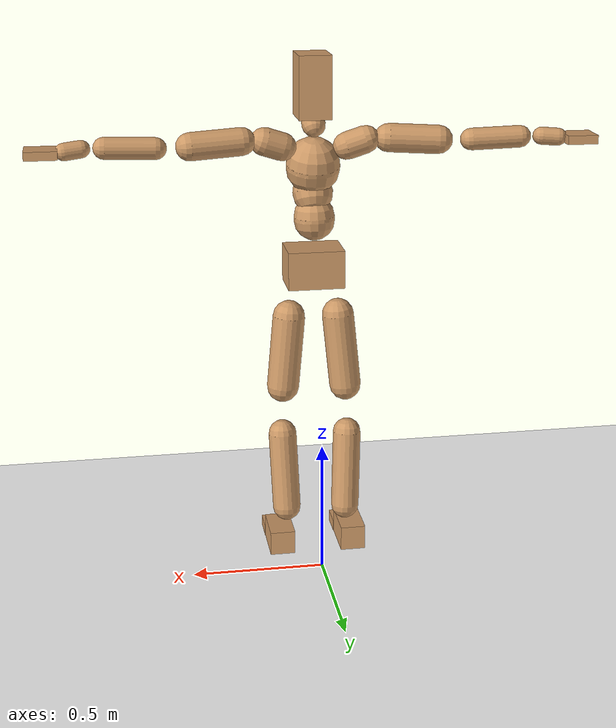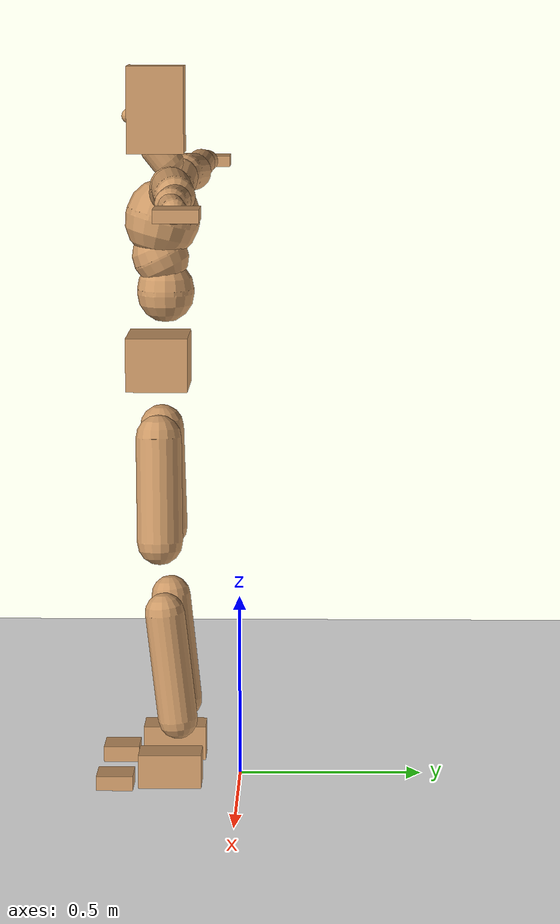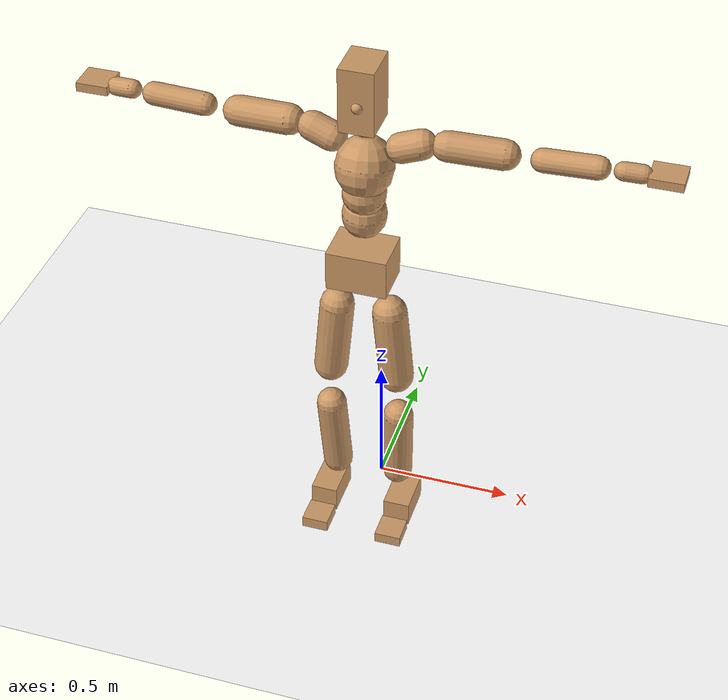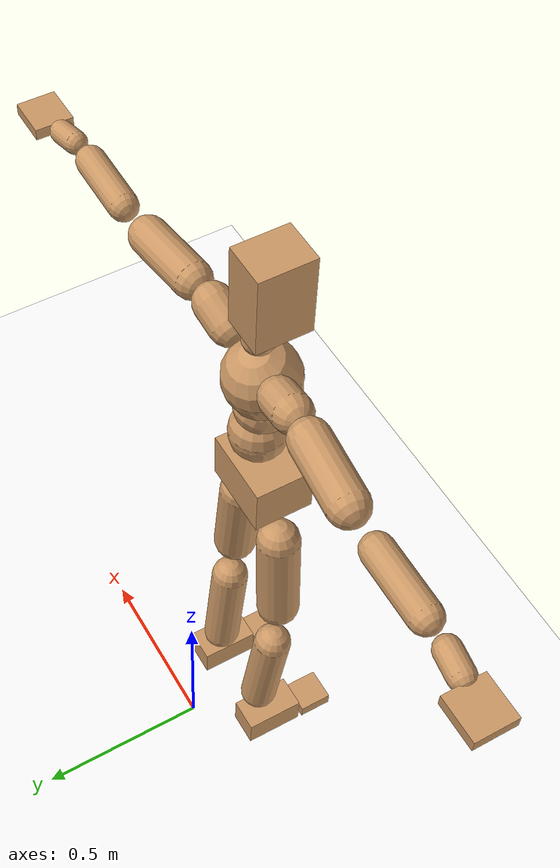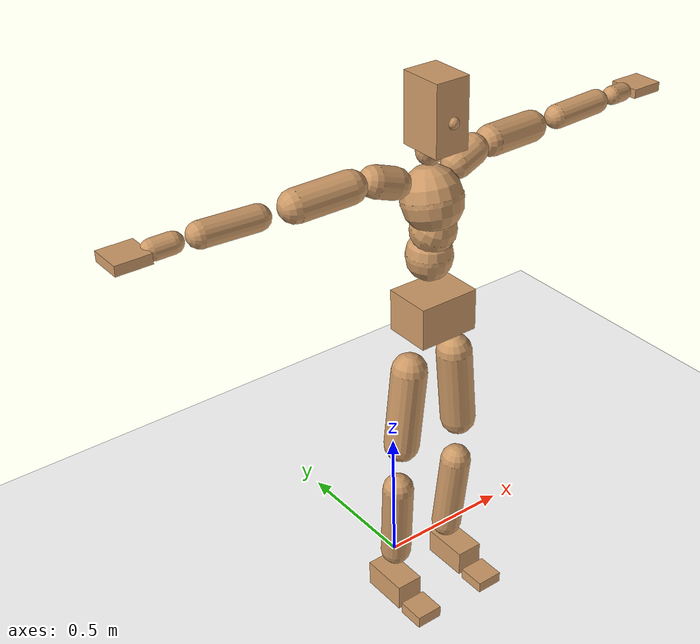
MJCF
<mujoco model="humanoid">
  <option integrator="implicitfast" />

  <visual>
    <global offwidth="1280" offheight="960" />
    <headlight active="1" ambient="0.34 0.34 0.34" diffuse="0.5 0.5 0.5" />
  </visual>

  <default>
    <joint damping="2" stiffness="2" armature="0.01" limited="true" solimplimit="0 .99 .01" />
    <geom condim="1" friction="0.7 0.005 0.0001" solimp=".99 .99 .003" solref="0.015 1" margin="0.001" rgba="0.8 0.6 .4 1" />
    <default class="smplcontact">
      <geom condim="3" friction="1. 0.005 0.0001" solref="0.015 1" solimp="0.98 0.98 0.001" priority="1" />
    </default>
    <default class="stiff_medium">
      <joint stiffness="10" />
    </default>
    <default class="stiff_medium_higher">
      <joint stiffness="50" />
    </default>
    <default class="stiff_high">
      <joint stiffness="100" />
    </default>
  </default>

  <asset>
    <texture type="skybox" builtin="gradient" rgb1="0.99 0.99 0.99" rgb2="0.608 0.828 0.892" width="100" />
    <texture builtin="flat" height="1278" mark="cross" markrgb="1 1 1" name="texgeom" random="0.01" rgb1="0.8 0.6 0.4" rgb2="0.8 0.6 0.4" type="cube" width="127" />
    <texture name="texplane" type="2d" builtin="checker" markrgb="1 1 1" rgb1="0.756 0.772 0.76" rgb2="0.6 0.6 0.6" width="100" height="100" />
    <material name="MatPlane" reflectance="0.5" texture="texplane" texrepeat="1 1" texuniform="true" />
    <material name="geom" texture="texgeom" texuniform="true" />
  </asset>

  <worldbody>
    <light name="tracking_light" pos="0 0 7" dir="0 0 -1" directional="true" cutoff="100" exponent="1" diffuse="1 1 1" specular="0.1 0.1 0.1" mode="trackcom" />
    <camera name="back" pos="0 3 2.4" xyaxes="-1 0 0 0 -1 2" mode="trackcom" />
    <camera name="side" pos="-3 0 2.4" xyaxes="0 -1 0 1 0 2" mode="trackcom" />
    <camera name="front_side" pos="-2.8 -2.8 0.8" xyaxes="0.5 -0.5 0 0.1 0.1 1" mode="trackcom" />
    <geom condim="3" name="floor" pos="0 0 0" rgba="1 1 1 1" size="100 100 .2" type="plane" material="MatPlane" />
    <body name="Pelvis" pos="-0.0018 -0.2233 1.16548" euler="90 0 0">
      <site name="Pelvis" size="0.01" />
      <freejoint name="Pelvis" />
      <geom type="box" pos="-0.0000 -0.0121 -0.0055" size="0.1069 0.0722 0.083" quat="1.0000 0.0000 0.0000 0.0000" density="3165.830099" name="Pelvis" />
      <body name="L_Hip" pos="0.086875 -0.11425 -0.0085">
        <joint name="L_Hip_x" type="hinge" pos="0 0 0" axis="1 0 0" stiffness="14.589841836734694" range="-160.0 22.92" class="stiff_medium" damping="24.10689143795971" armature="0.017703099984975993"/>
        <joint name="L_Hip_y" type="hinge" pos="0 0 0" axis="0 1 0" stiffness="14.527612551020406" range="-70.0 70.0" class="stiff_medium" damping="14.262213477061751" armature="0.01400166287137073"/>
        <joint name="L_Hip_z" type="hinge" pos="0 0 0" axis="0 0 1" stiffness="14.532940204081633" range="-28.65 90.0" class="stiff_medium" damping="16.042326803653772" armature="0.01770847782081624"/>
        <geom type="capsule" density="2040.816327" fromto="0.008625 -0.09375 -0.001125 0.03425 -0.37525 -0.0045" size="0.0615" name="L_Hip" />
        <body name="L_Knee" pos="0.042875 -0.469 -0.005625">
          <joint name="L_Knee_x" type="hinge" pos="0 0 0" axis="1 0 0" range="-5.16 171.89" damping="12.427866473289074" armature="0.01695568739341871" stiffness="2.8466087346938775"/>
          <joint name="L_Knee_y" type="hinge" pos="0 0 0" axis="0 1 0" range="-4.58 6.88" damping="11.131948599716754" armature="0.013404538190087148" stiffness="2.888953489795919"/>
          <joint name="L_Knee_z" type="hinge" pos="0 0 0" axis="0 0 1" range="-6.88 4.58" damping="12.396032357314192" armature="0.01698035549968793" stiffness="2.8279299387755104"/>
          <geom type="capsule" density="1234.567901" fromto="-0.003375 -0.0995 -0.010875 -0.013625 -0.398 -0.04375" size="0.0541" name="L_Knee" />
          <body name="L_Ankle" pos="-0.017 -0.4975 -0.054625">
            <joint name="L_Ankle_x" type="hinge" pos="0 0 0" axis="1 0 0" range="-45.84 45.84" class="stiff_medium" damping="7.851672460898037" armature="0.013699724540716583" stiffness="12.5"/>
            <joint name="L_Ankle_y" type="hinge" pos="0 0 0" axis="0 1 0" range="-74.48 22.92" class="stiff_medium" damping="3.9060654718054293" armature="0.013562086640027176" stiffness="12.5"/>
            <joint name="L_Ankle_z" type="hinge" pos="0 0 0" axis="0 0 1" range="-4.58 4.58" class="stiff_medium" damping="7.548153538649441" armature="0.012661027076228017" stiffness="12.5"/>
            <geom type="box" pos="0.029125 -0.029875 0.03025" size="0.0483 0.0464 0.085" quat="1.0000 0.0000 0.0000 0.0000" density="449.071558" name="L_Ankle" class="smplcontact" />
            <body name="L_Toe" pos="0.033 -0.06975 0.149125">
              <joint name="L_Toe_x" type="hinge" pos="0 0 0" axis="1 0 0" range="-91.67 22.92" armature="0.012138557001779838" damping="2.4635905708720998" stiffness="2.5"/>
              <joint name="L_Toe_y" type="hinge" pos="0 0 0" axis="0 1 0" range="-4.58 4.58" armature="0.01150678605468797" damping="2.3986231524239034" stiffness="2.5"/>
              <joint name="L_Toe_z" type="hinge" pos="0 0 0" axis="0 0 1" range="-4.58 4.58" armature="0.010229379204578545" damping="2.261567952171518" stiffness="2.5"/>
              <geom type="box" pos="-0.00375 0.006875 0.031" size="0.0478 0.02 0.0496" quat="1.0000 0.0000 0.0000 0.0000" density="423.206892" name="L_Toe" class="smplcontact" />
            </body>
          </body>
        </body>
      </body>
      <body name="R_Hip" pos="-0.084625 -0.113125 -0.005375">
        <joint name="R_Hip_x" type="hinge" pos="0 0 0" axis="1 0 0" stiffness="14.589841836734694" range="-160.0 22.92" class="stiff_medium" damping="24.10689143795971" armature="0.017703099984975993"/>
        <joint name="R_Hip_y" type="hinge" pos="0 0 0" axis="0 1 0" stiffness="14.527612551020406" range="-70.0 70.0" class="stiff_medium" damping="14.262213477061751" armature="0.01400166287137073"/>
        <joint name="R_Hip_z" type="hinge" pos="0 0 0" axis="0 0 1" stiffness="14.532940204081633" range="-90.0 28.65" class="stiff_medium" damping="16.042326803653772" armature="0.01770847782081624"/>
        <geom type="capsule" density="2040.816327" fromto="-0.009625 -0.095625 -0.00225 -0.03825 -0.382625 -0.008875" size="0.0606" name="R_Hip" />
        <body name="R_Knee" pos="-0.047875 -0.47825 -0.011125">
          <joint name="R_Knee_x" type="hinge" pos="0 0 0" axis="1 0 0" range="-5.16 171.89" damping="12.427866473289074" armature="0.01695568739341871" stiffness="2.8466087346938775"/>
          <joint name="R_Knee_y" type="hinge" pos="0 0 0" axis="0 1 0" range="-6.88 4.58" damping="11.131948599716754" armature="0.013404538190087148" stiffness="2.888953489795919"/>
          <joint name="R_Knee_z" type="hinge" pos="0 0 0" axis="0 0 1" range="-4.58 6.88" damping="12.396032357314192" armature="0.01698035549968793" stiffness="2.8279299387755104"/>
          <geom type="capsule" density="1234.567901" fromto="0.004 -0.099625 -0.010625 0.01575 -0.398375 -0.04225" size="0.0541" name="R_Knee" />
          <body name="R_Ankle" pos="0.01975 -0.498 -0.052875">
            <joint name="R_Ankle_x" type="hinge" pos="0 0 0" axis="1 0 0" range="-45.84 45.84" class="stiff_medium" damping="7.851672460898037" armature="0.013699724540716583" stiffness="12.5"/>
            <joint name="R_Ankle_y" type="hinge" pos="0 0 0" axis="0 1 0" range="-22.92 74.48" class="stiff_medium" damping="3.9060654718054293" armature="0.013562086640027176" stiffness="12.5"/>
            <joint name="R_Ankle_z" type="hinge" pos="0 0 0" axis="0 0 1" range="-4.58 4.58" class="stiff_medium" damping="7.548153538649441" armature="0.012661027076228017" stiffness="12.5"/>
            <geom type="box" pos="-0.0265 -0.02175 0.032" size="0.0483 0.0478 0.0865" quat="1.0000 0.0000 0.0000 0.0000" density="434.700981" name="R_Ankle" class="smplcontact" />
            <body name="R_Toe" pos="-0.03175 -0.060125 0.154125">
              <joint name="R_Toe_x" type="hinge" pos="0 0 0" axis="1 0 0" range="-91.67 22.92" armature="0.012138557001779838" damping="2.4635905708720998" stiffness="2.5"/>
              <joint name="R_Toe_y" type="hinge" pos="0 0 0" axis="0 1 0" range="-4.58 4.58" armature="0.01150678605468797" damping="2.3986231524239034" stiffness="2.5"/>
              <joint name="R_Toe_z" type="hinge" pos="0 0 0" axis="0 0 1" range="-4.58 4.58" armature="0.010229379204578545" damping="2.261567952171518" stiffness="2.5"/>
              <geom type="box" pos="0.00525 0.005625 0.028375" size="0.0479 0.0216 0.0493" quat="1.0000 0.0000 0.0000 0.0000" density="407.384095" name="R_Toe" class="smplcontact" />
            </body>
          </body>
        </body>
      </body>
      <body name="Torso" pos="-0.0025 0.109 -0.0267">
        <joint name="Torso_x" type="hinge" pos="0 0 0" axis="1 0 0" range="-25.78 57.3" class="stiff_medium" damping="16.249002662379553" armature="0.01100082294488812" stiffness="10.667084285714289"/>
        <joint name="Torso_y" type="hinge" pos="0 0 0" axis="0 1 0" range="-57.3 57.3" class="stiff_high" damping="25.82786225767886" armature="0.015782642166796153" stiffness="105.6664755102041"/>
        <joint name="Torso_z" type="hinge" pos="0 0 0" axis="0 0 1" range="-34.38 34.38" class="stiff_high" damping="22.95942684909094" armature="0.012628565201764912" stiffness="104.35375531914897"/>
        <geom type="capsule" density="2040.816327" fromto="0.0025 0.0608 0.0005 0.003 0.0743 0.0006" size="0.0769" name="Torso" />
        <body name="Spine" pos="0.0055 0.1352 0.0011">
          <joint name="Spine_x" type="hinge" pos="0 0 0" axis="1 0 0" stiffness="10.801640204081632" range="-25.78 57.3" class="stiff_medium" damping="16.529498689681223" armature="0.011242092117287047"/>
          <joint name="Spine_y" type="hinge" pos="0 0 0" axis="0 1 0" stiffness="10.993194042553192" range="-57.3 57.3" class="stiff_high" damping="10.550939846165114" armature="0.01582262102443805"/>
          <joint name="Spine_z" type="hinge" pos="0 0 0" axis="0 0 1" stiffness="21.950184081632656" range="-34.38 34.38" class="stiff_high" damping="14.755254913518769" armature="0.013775988465595869"/>
          <geom type="capsule" density="2040.816327" fromto="0.0007 0.0238 0.0114 0.0008 0.0291 0.014" size="0.0755" name="Spine" />
          <body name="Chest" pos="0.0015 0.0529 0.0254">
            <joint name="Chest_x" type="hinge" pos="0 0 0" axis="1 0 0" stiffness="11.160686250000001" range="-25.78 57.3" class="stiff_medium" damping="16.913025635620162" armature="0.011391192649850413"/>
            <joint name="Chest_y" type="hinge" pos="0 0 0" axis="0 1 0" stiffness="12.279827826086954" range="-57.3 57.3" class="stiff_high" damping="11.15352776697087" armature="0.015828955346832544"/>
            <joint name="Chest_z" type="hinge" pos="0 0 0" axis="0 0 1" stiffness="22.066057083333334" range="-34.38 34.38" class="stiff_high" damping="15.064016907343916" armature="0.01428316177394549"/>
            <geom type="capsule" density="2040.816327" fromto="-0.0009 0.0682 -0.0173 -0.001 0.0833 -0.0212" size="0.1002" name="Chest" />
            <body name="Neck" pos="-0.0028 0.2139 -0.0429">
              <joint name="Neck_x" type="hinge" pos="0 0 0" axis="1 0 0" range="-28.65 57.3" class="stiff_medium_higher" damping="10.000000000000002" armature="0.010000000000000005" stiffness="50.0"/>
              <joint name="Neck_y" type="hinge" pos="0 0 0" axis="0 1 0" range="-40.11 40.11" class="stiff_medium_higher" damping="10.0" armature="0.010000000000000002" stiffness="50.0"/>
              <joint name="Neck_z" type="hinge" pos="0 0 0" axis="0 0 1" range="-40.11 40.11" class="stiff_medium_higher" damping="10.0" armature="0.01" stiffness="50.0"/>
              <geom type="capsule" density="1000" fromto="0.001 0.013 0.0103 0.0041 0.052 0.0411" size="0.0436" name="Neck" />
              <body name="Head" pos="0.0052 0.065 0.0513">
                <joint name="Head_x" type="hinge" pos="0 0 0" axis="1 0 0" range="-28.65 57.3" class="stiff_medium_higher" damping="2.0000000000000027" armature="0.010000000000000026" stiffness="50.0"/>
                <joint name="Head_y" type="hinge" pos="0 0 0" axis="0 1 0" range="-40.11 40.11" class="stiff_medium_higher" damping="2.0" armature="0.01" stiffness="50.0"/>
                <joint name="Head_z" type="hinge" pos="0 0 0" axis="0 0 1" range="-40.11 40.11" class="stiff_medium_higher" damping="1.9999999999999964" armature="0.009999999999999966" stiffness="50.0"/>
                <geom type="box" pos="-0.0042 0.0876 -0.0116" size="0.0606 0.1154 0.076" quat="1.0000 0.0000 0.0000 0.0000" density="1018.069894" name="Head" />
                <geom type="capsule" name="nose" size="0.02 0.01" pos="0 0.07 0.05" quat="1 0 0 0" mass="0" contype="0" conaffinity="0" />
              </body>
            </body>
            <body name="L_Thorax" pos="0.09456 0.14604 -0.04092">
              <joint name="L_Thorax_x" type="hinge" pos="0 0 0" axis="1 0 0" range="-10.89 4.58" class="stiff_medium_higher" damping="27.34282803714538" armature="0.013883161405287376" stiffness="67.31448112244898"/>
              <joint name="L_Thorax_y" type="hinge" pos="0 0 0" axis="0 1 0" range="-28.65 17.19" class="stiff_medium_higher" damping="29.39539222803986" armature="0.015973211475722778" stiffness="67.620175"/>
              <joint name="L_Thorax_z" type="hinge" pos="0 0 0" axis="0 0 1" range="-31.51 40.11" class="stiff_medium_higher" damping="29.39640952740423" armature="0.015975115138279115" stiffness="67.61679693877551"/>
              <geom type="capsule" density="1000" fromto="0.02184 0.00732 -0.00216 0.08736 0.02928 -0.00852" size="0.0521" name="L_Thorax" />
              <body name="L_Shoulder" pos="0.1092 0.0366 -0.01068">
                <joint name="L_Shoulder_x" type="hinge" pos="0 0 0" axis="1 0 0" range="-97.4 97.4" class="stiff_medium" damping="7.934224871342941" armature="0.013032307273704974" stiffness="13.417919999999999"/>
                <joint name="L_Shoulder_y" type="hinge" pos="0 0 0" axis="0 1 0" range="-108.86 80.21" class="stiff_medium" damping="8.787023272078152" armature="0.015885669306109254" stiffness="13.501298367346937"/>
                <joint name="L_Shoulder_z" type="hinge" pos="0 0 0" axis="0 0 1" range="-97.4 85.94" class="stiff_medium" damping="8.786069504764413" armature="0.015888008764521212" stiffness="13.496380000000002"/>
                <geom type="capsule" density="1000" fromto="0.06228 -0.00312 -0.0066 0.24924 -0.01224 -0.0264" size="0.0517" name="L_Shoulder" />
                <body name="L_Elbow" pos="0.31152 -0.01536 -0.033">
                  <joint name="L_Elbow_x" type="hinge" pos="0 0 0" axis="1 0 0" range="-17.19 4.58" damping="6.232456205291705" armature="0.01173152521758946" stiffness="2.6488293469387756"/>
                  <joint name="L_Elbow_y" type="hinge" pos="0 0 0" axis="0 1 0" range="-180.0 17.19" damping="7.156106367972158" armature="0.015461775606096713" stiffness="2.649623673469388"/>
                  <joint name="L_Elbow_z" type="hinge" pos="0 0 0" axis="0 0 1" range="-100.84 4.58" damping="7.157115854883433" armature="0.015474031127394245" stiffness="2.648272163265306"/>
                  <geom type="capsule" density="1000" fromto="0.05976 0.00216 -0.00024 0.23928 0.00864 -0.00108" size="0.0405" name="L_Elbow" />
                  <body name="L_Wrist" pos="0.29904 0.0108 -0.00144">
                    <joint name="L_Wrist_x" type="hinge" pos="0 0 0" axis="1 0 0" range="-180.0 22.92" armature="0.011470487256353374" damping="2.3885555565203282" stiffness="2.4869029183673472"/>
                    <joint name="L_Wrist_y" type="hinge" pos="0 0 0" axis="0 1 0" range="-17.19 17.19" armature="0.01413784103297376" damping="2.658561374727875" stiffness="2.4996562653061227"/>
                    <joint name="L_Wrist_z" type="hinge" pos="0 0 0" axis="0 0 1" range="-22.92 22.92" armature="0.014283798741946102" damping="2.669498465346269" stiffness="2.4945122040816328"/>
                    <geom type="capsule" density="1000" fromto="0.02016 -0.00192 -0.0036 0.08064 -0.0078 -0.0144" size="0.0318" name="L_Wrist" class="smplcontact" />
                    <body name="L_Hand" pos="0.1008 -0.00984 -0.01788">
                      <joint name="L_Hand_x" type="hinge" pos="0 0 0" axis="1 0 0" range="-17.19 17.19" armature="0.010191691106290314" damping="2.2117892600831914" stiffness="2.4000000000000004"/>
                      <joint name="L_Hand_y" type="hinge" pos="0 0 0" axis="0 1 0" range="-51.57 51.57" armature="0.012318239464288547" damping="2.4316157062452333" stiffness="2.4000000000000004"/>
                      <joint name="L_Hand_z" type="hinge" pos="0 0 0" axis="0 0 1" range="-91.67 91.67" armature="0.01288509998431659" damping="2.486935462064097" stiffness="2.4000000000000004"/>
                      <geom type="box" pos="0.05916 0.0012 -0.00696" size="0.0585 0.0158 0.0538" quat="1.0000 0.0000 0.0000 0.0000" density="400.552564" name="L_Hand" class="smplcontact" />
                    </body>
                  </body>
                </body>
              </body>
            </body>
            <body name="R_Thorax" pos="-0.09816 0.14256 -0.04632">
              <joint name="R_Thorax_x" type="hinge" pos="0 0 0" axis="1 0 0" range="-10.89 4.58" class="stiff_medium_higher" damping="27.34282803714538" armature="0.013883161405287376" stiffness="67.31448112244898"/>
              <joint name="R_Thorax_y" type="hinge" pos="0 0 0" axis="0 1 0" range="-17.19 28.65" class="stiff_medium_higher" damping="29.39539222803986" armature="0.015973211475722778" stiffness="67.620175"/>
              <joint name="R_Thorax_z" type="hinge" pos="0 0 0" axis="0 0 1" range="-40.11 31.51" class="stiff_medium_higher" damping="29.39640952740423" armature="0.015975115138279115" stiffness="67.61679693877551"/>
              <geom type="capsule" density="1000" fromto="-0.02304 0.0078 -0.00216 -0.09216 0.0312 -0.00876" size="0.0511" name="R_Thorax" />
              <body name="R_Shoulder" pos="-0.1152 0.03912 -0.01092">
                <joint name="R_Shoulder_x" type="hinge" pos="0 0 0" axis="1 0 0" range="-97.4 97.4" class="stiff_medium" damping="7.934224871342941" armature="0.013032307273704974" stiffness="13.417919999999999"/>
                <joint name="R_Shoulder_y" type="hinge" pos="0 0 0" axis="0 1 0" range="-80.21 108.86" class="stiff_medium" damping="8.787023272078152" armature="0.015885669306109254" stiffness="13.501298367346937"/>
                <joint name="R_Shoulder_z" type="hinge" pos="0 0 0" axis="0 0 1" range="-85.94 97.4" class="stiff_medium" damping="8.786069504764413" armature="0.015888008764521212" stiffness="13.496380000000002"/>
                <geom type="capsule" density="1000" fromto="-0.06084 -0.00324 -0.00516 -0.2436 -0.01284 -0.02052" size="0.0531" name="R_Shoulder" />
                <body name="R_Elbow" pos="-0.30444 -0.01596 -0.02568">
                  <joint name="R_Elbow_x" type="hinge" pos="0 0 0" axis="1 0 0" range="-17.19 4.58" damping="6.232456205291705" armature="0.01173152521758946" stiffness="2.6488293469387756"/>
                  <joint name="R_Elbow_y" type="hinge" pos="0 0 0" axis="0 1 0" range="-17.19 180.0" damping="7.156106367972158" armature="0.015461775606096713" stiffness="2.649623673469388"/>
                  <joint name="R_Elbow_z" type="hinge" pos="0 0 0" axis="0 0 1" range="-4.58 100.84" damping="7.157115854883433" armature="0.015474031127394245" stiffness="2.648272163265306"/>
                  <geom type="capsule" density="1000" fromto="-0.06132 0.00192 -0.00132 -0.24504 0.00744 -0.00528" size="0.0408" name="R_Elbow" />
                  <body name="R_Wrist" pos="-0.30636 0.00936 -0.00672">
                    <joint name="R_Wrist_x" type="hinge" pos="0 0 0" axis="1 0 0" range="-180.0 22.92" armature="0.011470487256353374" damping="2.3885555565203282" stiffness="2.4869029183673472"/>
                    <joint name="R_Wrist_y" type="hinge" pos="0 0 0" axis="0 1 0" range="-17.19 17.19" armature="0.01413784103297376" damping="2.658561374727875" stiffness="2.4996562653061227"/>
                    <joint name="R_Wrist_z" type="hinge" pos="0 0 0" axis="0 0 1" range="-22.92 22.92" armature="0.014283798741946102" damping="2.669498465346269" stiffness="2.4945122040816328"/>
                    <geom type="capsule" density="1000" fromto="-0.02028 -0.00144 -0.00252 -0.08124 -0.00588 -0.00996" size="0.0326" name="R_Wrist" class="smplcontact" />
                    <body name="R_Hand" pos="-0.10152 -0.00732 -0.01236">
                      <joint name="R_Hand_x" type="hinge" pos="0 0 0" axis="1 0 0" range="-17.19 17.19" armature="0.010191691106290314" damping="2.2117892600831914" stiffness="2.4000000000000004"/>
                      <joint name="R_Hand_y" type="hinge" pos="0 0 0" axis="0 1 0" range="-51.57 51.57" armature="0.012318239464288547" damping="2.4316157062452333" stiffness="2.4000000000000004"/>
                      <joint name="R_Hand_z" type="hinge" pos="0 0 0" axis="0 0 1" range="-91.67 91.67" armature="0.01288509998431659" damping="2.486935462064097" stiffness="2.4000000000000004"/>
                      <geom type="box" pos="-0.05544 -0.00108 -0.00948" size="0.0569 0.0164 0.0546" quat="1.0000 0.0000 0.0000 0.0000" density="403.679611" name="R_Hand" class="smplcontact" />
                    </body>
                  </body>
                </body>
              </body>
            </body>
          </body>
        </body>
      </body>
    </body>
  </worldbody>
  <actuator>
    <general name="L_Hip_x" joint="L_Hip_x" biastype="affine" gainprm="419.21001901187765" biasprm="-314.15541988928595 -262.6171530612245 -3.214252191727961" ctrllimited="true" ctrlrange="-1 1" forcerange="-525.234306122449 525.234306122449" />
    <general name="L_Hip_y" joint="L_Hip_y" biastype="affine" gainprm="319.47888605139207" biasprm="0.0 -261.4970259183673 -2.8524426954123503" ctrllimited="true" ctrlrange="-1 1" forcerange="-522.9940518367346 522.9940518367346" />
    <general name="L_Hip_z" joint="L_Hip_z" biastype="affine" gainprm="270.857650054052" biasprm="140.0515535677715 -261.5929236734694 -3.2084653607307545" ctrllimited="true" ctrlrange="-1 1" forcerange="-523.1858473469388 523.1858473469388" />
    <general name="L_Knee_x" joint="L_Knee_x" biastype="affine" gainprm="395.8344512323349" biasprm="372.7618077038531 -256.194786122449 -3.1069666183222684" ctrllimited="true" ctrlrange="-1 1" forcerange="-512.389572244898 512.389572244898" />
    <general name="L_Knee_y" joint="L_Knee_y" biastype="affine" gainprm="26.002496647202126" biasprm="5.218651159560636 -260.0058140816327 -2.7829871499291885" ctrllimited="true" ctrlrange="-1 1" forcerange="-520.0116281632654 520.0116281632654" />
    <general name="L_Knee_z" joint="L_Knee_z" biastype="affine" gainprm="25.45324423230062" biasprm="-5.108417254301171 -254.51369448979594 -3.099008089328548" ctrllimited="true" ctrlrange="-1 1" forcerange="-509.0273889795919 509.0273889795919" />
    <general name="L_Ankle_x" joint="L_Ankle_x" biastype="affine" gainprm="90.00662952534759" biasprm="0.0 -112.5 -2.617224153632679" ctrllimited="true" ctrlrange="-1 1" forcerange="-225.0 225.0" />
    <general name="L_Ankle_y" joint="L_Ankle_y" biastype="affine" gainprm="95.62222639363935" biasprm="-50.61891163096555 -112.5 -2.604043647870286" ctrllimited="true" ctrlrange="-1 1" forcerange="-225.0 225.0" />
    <general name="L_Ankle_z" joint="L_Ankle_z" biastype="affine" gainprm="8.992808970900782" biasprm="0.0 -112.5 -2.5160511795498137" ctrllimited="true" ctrlrange="-1 1" forcerange="-225.0 225.0" />
    <general name="L_Toe_x" joint="L_Toe_x" biastype="affine" gainprm="89.99877554371359" biasprm="-53.996123733574564 -90.0 -0.9854362283488399" ctrllimited="true" ctrlrange="-1 1" forcerange="-180.0 180.0" />
    <general name="L_Toe_y" joint="L_Toe_y" biastype="affine" gainprm="7.194247176720626" biasprm="0.0 -90.0 -0.9594492609695614" ctrllimited="true" ctrlrange="-1 1" forcerange="-180.0 180.0" />
    <general name="L_Toe_z" joint="L_Toe_z" biastype="affine" gainprm="7.194247176720626" biasprm="0.0 -90.0 -0.9046271808686073" ctrllimited="true" ctrlrange="-1 1" forcerange="-180.0 180.0" />
    <general name="R_Hip_x" joint="R_Hip_x" biastype="affine" gainprm="419.21001901187765" biasprm="-314.15541988928595 -262.6171530612245 -3.214252191727961" ctrllimited="true" ctrlrange="-1 1" forcerange="-525.234306122449 525.234306122449" />
    <general name="R_Hip_y" joint="R_Hip_y" biastype="affine" gainprm="319.47888605139207" biasprm="0.0 -261.4970259183673 -2.8524426954123503" ctrllimited="true" ctrlrange="-1 1" forcerange="-522.9940518367346 522.9940518367346" />
    <general name="R_Hip_z" joint="R_Hip_z" biastype="affine" gainprm="270.857650054052" biasprm="-140.0515535677715 -261.5929236734694 -3.2084653607307545" ctrllimited="true" ctrlrange="-1 1" forcerange="-523.1858473469388 523.1858473469388" />
    <general name="R_Knee_x" joint="R_Knee_x" biastype="affine" gainprm="395.8344512323349" biasprm="372.7618077038531 -256.194786122449 -3.1069666183222684" ctrllimited="true" ctrlrange="-1 1" forcerange="-512.389572244898 512.389572244898" />
    <general name="R_Knee_y" joint="R_Knee_y" biastype="affine" gainprm="26.002496647202126" biasprm="-5.218651159560636 -260.0058140816327 -2.7829871499291885" ctrllimited="true" ctrlrange="-1 1" forcerange="-520.0116281632654 520.0116281632654" />
    <general name="R_Knee_z" joint="R_Knee_z" biastype="affine" gainprm="25.45324423230062" biasprm="5.108417254301171 -254.51369448979594 -3.099008089328548" ctrllimited="true" ctrlrange="-1 1" forcerange="-509.0273889795919 509.0273889795919" />
    <general name="R_Ankle_x" joint="R_Ankle_x" biastype="affine" gainprm="90.00662952534759" biasprm="0.0 -112.5 -2.617224153632679" ctrllimited="true" ctrlrange="-1 1" forcerange="-225.0 225.0" />
    <general name="R_Ankle_y" joint="R_Ankle_y" biastype="affine" gainprm="95.62222639363935" biasprm="50.61891163096555 -112.5 -2.604043647870286" ctrllimited="true" ctrlrange="-1 1" forcerange="-225.0 225.0" />
    <general name="R_Ankle_z" joint="R_Ankle_z" biastype="affine" gainprm="8.992808970900782" biasprm="0.0 -112.5 -2.5160511795498137" ctrllimited="true" ctrlrange="-1 1" forcerange="-225.0 225.0" />
    <general name="R_Toe_x" joint="R_Toe_x" biastype="affine" gainprm="89.99877554371359" biasprm="-53.996123733574564 -90.0 -0.9854362283488399" ctrllimited="true" ctrlrange="-1 1" forcerange="-180.0 180.0" />
    <general name="R_Toe_y" joint="R_Toe_y" biastype="affine" gainprm="7.194247176720626" biasprm="0.0 -90.0 -0.9594492609695614" ctrllimited="true" ctrlrange="-1 1" forcerange="-180.0 180.0" />
    <general name="R_Toe_z" joint="R_Toe_z" biastype="affine" gainprm="7.194247176720626" biasprm="0.0 -90.0 -0.9046271808686073" ctrllimited="true" ctrlrange="-1 1" forcerange="-180.0 180.0" />
    <general name="Torso_x" joint="Torso_x" biastype="affine" gainprm="185.60976811664653" biasprm="70.4191127953382 -256.0100228571429 -4.333067376634547" ctrllimited="true" ctrlrange="-1 1" forcerange="-384.01503428571436 384.01503428571436" />
    <general name="Torso_y" joint="Torso_y" biastype="affine" gainprm="253.61822171989738" biasprm="0.0 -253.59954122448983 -5.1655724515357715" ctrllimited="true" ctrlrange="-1 1" forcerange="-380.39931183673474 380.39931183673474" />
    <general name="Torso_z" joint="Torso_z" biastype="affine" gainprm="150.28047671343057" biasprm="0.0 -250.44901276595752 -4.591885369818188" ctrllimited="true" ctrlrange="-1 1" forcerange="-375.6735191489363 375.6735191489363" />
    <general name="Spine_x" joint="Spine_x" biastype="affine" gainprm="187.9510726510386" biasprm="71.3073881795948 -259.2393648979592 -4.407866317248326" ctrllimited="true" ctrlrange="-1 1" forcerange="-388.8590473469388 388.8590473469388" />
    <general name="Spine_y" joint="Spine_y" biastype="affine" gainprm="263.8560915968915" biasprm="0.0 -263.8366570212766 -5.275469923082557" ctrllimited="true" ctrlrange="-1 1" forcerange="-395.7549855319149 395.7549855319149" />
    <general name="Spine_z" joint="Spine_z" biastype="affine" gainprm="158.05296693189538" biasprm="0.0 -263.4022089795919 -4.918418304506257" ctrllimited="true" ctrlrange="-1 1" forcerange="-395.1033134693878 395.1033134693878" />
    <general name="Chest_x" joint="Chest_x" biastype="affine" gainprm="194.19855805015155" biasprm="73.67764263048598 -267.85647 -4.51014016949871" ctrllimited="true" ctrlrange="-1 1" forcerange="-401.78470500000003 401.78470500000003" />
    <general name="Chest_y" joint="Chest_y" biastype="affine" gainprm="294.73757700737673" biasprm="0.0 -294.71586782608694 -5.576763883485435" ctrllimited="true" ctrlrange="-1 1" forcerange="-442.0738017391304 442.0738017391304" />
    <general name="Chest_z" joint="Chest_z" biastype="affine" gainprm="158.88731399878043" biasprm="0.0 -264.792685 -5.021338969114638" ctrllimited="true" ctrlrange="-1 1" forcerange="-397.1890275 397.1890275" />
    <general name="Neck_x" joint="Neck_x" biastype="affine" gainprm="27.00198885760427" biasprm="9.000662952534757 -36.0 -0.8000000000000003" ctrllimited="true" ctrlrange="-1 1" forcerange="-72.0 72.0" />
    <general name="Neck_y" joint="Neck_y" biastype="affine" gainprm="25.20185626709732" biasprm="0.0 -36.0 -0.8" ctrllimited="true" ctrlrange="-1 1" forcerange="-72.0 72.0" />
    <general name="Neck_z" joint="Neck_z" biastype="affine" gainprm="25.20185626709732" biasprm="0.0 -36.0 -0.8" ctrllimited="true" ctrlrange="-1 1" forcerange="-72.0 72.0" />
    <general name="Head_x" joint="Head_x" biastype="affine" gainprm="18.001325905069514" biasprm="6.000441968356505 -24.0 -0.8000000000000012" ctrllimited="true" ctrlrange="-1 1" forcerange="-48.0 48.0" />
    <general name="Head_y" joint="Head_y" biastype="affine" gainprm="16.801237511398213" biasprm="0.0 -24.0 -0.8" ctrllimited="true" ctrlrange="-1 1" forcerange="-48.0 48.0" />
    <general name="Head_z" joint="Head_z" biastype="affine" gainprm="16.801237511398213" biasprm="0.0 -24.0 -0.7999999999999986" ctrllimited="true" ctrlrange="-1 1" forcerange="-48.0 48.0" />
    <general name="L_Thorax_x" joint="L_Thorax_x" biastype="affine" gainprm="21.810088599489532" biasprm="-8.896034845687073 -161.55475469387756 -2.1874262429716302" ctrllimited="true" ctrlrange="-1 1" forcerange="-323.1095093877551 323.1095093877551" />
    <general name="L_Thorax_y" joint="L_Thorax_y" biastype="affine" gainprm="64.92014975641781" biasprm="-16.230037439104454 -162.28842 -2.3516313782431886" ctrllimited="true" ctrlrange="-1 1" forcerange="-324.57684 324.57684" />
    <general name="L_Thorax_z" joint="L_Thorax_z" biastype="affine" gainprm="101.42558571489965" biasprm="12.179000797935451 -162.28031265306123 -2.3517127621923386" ctrllimited="true" ctrlrange="-1 1" forcerange="-324.56062530612246 324.56062530612246" />
    <general name="L_Shoulder_x" joint="L_Shoulder_x" biastype="affine" gainprm="109.48705143225524" biasprm="0.0 -64.406016 -2.1157932990247845" ctrllimited="true" ctrlrange="-1 1" forcerange="-128.812032 128.812032" />
    <general name="L_Shoulder_y" joint="L_Shoulder_y" biastype="affine" gainprm="106.92684888169526" biasprm="-16.202751470146342 -64.80623216326529 -2.3432062058875074" ctrllimited="true" ctrlrange="-1 1" forcerange="-129.61246432653058 129.61246432653058" />
    <general name="L_Shoulder_z" joint="L_Shoulder_z" biastype="affine" gainprm="103.64852686442701" biasprm="-6.478739597831004 -64.782624 -2.342951867937177" ctrllimited="true" ctrlrange="-1 1" forcerange="-129.565248 129.565248" />
    <general name="L_Elbow_x" joint="L_Elbow_x" biastype="affine" gainprm="18.115998712513008" biasprm="-10.493465492181402 -95.35785648979592 -0.997192992846673" ctrllimited="true" ctrlrange="-1 1" forcerange="-190.71571297959184 190.71571297959184" />
    <general name="L_Elbow_y" joint="L_Elbow_y" biastype="affine" gainprm="164.14171059385552" biasprm="-135.52366703070956 -95.38645224489797 -1.1449770188755453" ctrllimited="true" ctrlrange="-1 1" forcerange="-190.77290448979593 190.77290448979593" />
    <general name="L_Elbow_z" joint="L_Elbow_z" biastype="affine" gainprm="87.70725119427513" biasprm="-80.08632138077144 -95.33779787755103 -1.1451385367813491" ctrllimited="true" ctrlrange="-1 1" forcerange="-190.67559575510205 190.67559575510205" />
    <general name="L_Wrist_x" joint="L_Wrist_x" biastype="affine" gainprm="26.423011144121567" biasprm="-20.454004487081686 -14.921417510204083 -0.9554222226081314" ctrllimited="true" ctrlrange="-1 1" forcerange="-29.842835020408167 29.842835020408167" />
    <general name="L_Wrist_y" joint="L_Wrist_y" biastype="affine" gainprm="4.499712708242443" biasprm="0.0 -14.997937591836736 -1.06342454989115" ctrllimited="true" ctrlrange="-1 1" forcerange="-29.995875183673473 29.995875183673473" />
    <general name="L_Wrist_z" joint="L_Wrist_z" biastype="affine" gainprm="5.987270287979567" biasprm="0.0 -14.967073224489797 -1.0677993861385076" ctrllimited="true" ctrlrange="-1 1" forcerange="-29.934146448979593 29.934146448979593" />
    <general name="L_Hand_x" joint="L_Hand_x" biastype="affine" gainprm="4.320318217216685" biasprm="0.0 -14.400000000000002 -0.8847157040332766" ctrllimited="true" ctrlrange="-1 1" forcerange="-28.800000000000004 28.800000000000004" />
    <general name="L_Hand_y" joint="L_Hand_y" biastype="affine" gainprm="12.960954651650052" biasprm="0.0 -14.400000000000002 -0.9726462824980934" ctrllimited="true" ctrlrange="-1 1" forcerange="-28.800000000000004 28.800000000000004" />
    <general name="L_Hand_z" joint="L_Hand_z" biastype="affine" gainprm="23.03918388436611" biasprm="0.0 -14.400000000000002 -0.9947741848256388" ctrllimited="true" ctrlrange="-1 1" forcerange="-28.800000000000004 28.800000000000004" />
    <general name="R_Thorax_x" joint="R_Thorax_x" biastype="affine" gainprm="21.810088599489532" biasprm="-8.896034845687073 -161.55475469387756 -2.1874262429716302" ctrllimited="true" ctrlrange="-1 1" forcerange="-323.1095093877551 323.1095093877551" />
    <general name="R_Thorax_y" joint="R_Thorax_y" biastype="affine" gainprm="64.92014975641781" biasprm="16.230037439104443 -162.28842 -2.3516313782431886" ctrllimited="true" ctrlrange="-1 1" forcerange="-324.57684 324.57684" />
    <general name="R_Thorax_z" joint="R_Thorax_z" biastype="affine" gainprm="101.42558571489965" biasprm="-12.179000797935451 -162.28031265306123 -2.3517127621923386" ctrllimited="true" ctrlrange="-1 1" forcerange="-324.56062530612246 324.56062530612246" />
    <general name="R_Shoulder_x" joint="R_Shoulder_x" biastype="affine" gainprm="109.48705143225524" biasprm="0.0 -64.406016 -2.1157932990247845" ctrllimited="true" ctrlrange="-1 1" forcerange="-128.812032 128.812032" />
    <general name="R_Shoulder_y" joint="R_Shoulder_y" biastype="affine" gainprm="106.92684888169526" biasprm="16.202751470146342 -64.80623216326529 -2.3432062058875074" ctrllimited="true" ctrlrange="-1 1" forcerange="-129.61246432653058 129.61246432653058" />
    <general name="R_Shoulder_z" joint="R_Shoulder_z" biastype="affine" gainprm="103.64852686442701" biasprm="6.478739597830989 -64.782624 -2.342951867937177" ctrllimited="true" ctrlrange="-1 1" forcerange="-129.565248 129.565248" />
    <general name="R_Elbow_x" joint="R_Elbow_x" biastype="affine" gainprm="18.115998712513008" biasprm="-10.493465492181402 -95.35785648979592 -0.997192992846673" ctrllimited="true" ctrlrange="-1 1" forcerange="-190.71571297959184 190.71571297959184" />
    <general name="R_Elbow_y" joint="R_Elbow_y" biastype="affine" gainprm="164.14171059385552" biasprm="135.52366703070956 -95.38645224489797 -1.1449770188755453" ctrllimited="true" ctrlrange="-1 1" forcerange="-190.77290448979593 190.77290448979593" />
    <general name="R_Elbow_z" joint="R_Elbow_z" biastype="affine" gainprm="87.70725119427513" biasprm="80.08632138077142 -95.33779787755103 -1.1451385367813491" ctrllimited="true" ctrlrange="-1 1" forcerange="-190.67559575510205 190.67559575510205" />
    <general name="R_Wrist_x" joint="R_Wrist_x" biastype="affine" gainprm="26.423011144121567" biasprm="-20.454004487081686 -14.921417510204083 -0.9554222226081314" ctrllimited="true" ctrlrange="-1 1" forcerange="-29.842835020408167 29.842835020408167" />
    <general name="R_Wrist_y" joint="R_Wrist_y" biastype="affine" gainprm="4.499712708242443" biasprm="0.0 -14.997937591836736 -1.06342454989115" ctrllimited="true" ctrlrange="-1 1" forcerange="-29.995875183673473 29.995875183673473" />
    <general name="R_Wrist_z" joint="R_Wrist_z" biastype="affine" gainprm="5.987270287979567" biasprm="0.0 -14.967073224489797 -1.0677993861385076" ctrllimited="true" ctrlrange="-1 1" forcerange="-29.934146448979593 29.934146448979593" />
    <general name="R_Hand_x" joint="R_Hand_x" biastype="affine" gainprm="4.320318217216685" biasprm="0.0 -14.400000000000002 -0.8847157040332766" ctrllimited="true" ctrlrange="-1 1" forcerange="-28.800000000000004 28.800000000000004" />
    <general name="R_Hand_y" joint="R_Hand_y" biastype="affine" gainprm="12.960954651650052" biasprm="0.0 -14.400000000000002 -0.9726462824980934" ctrllimited="true" ctrlrange="-1 1" forcerange="-28.800000000000004 28.800000000000004" />
    <general name="R_Hand_z" joint="R_Hand_z" biastype="affine" gainprm="23.03918388436611" biasprm="0.0 -14.400000000000002 -0.9947741848256388" ctrllimited="true" ctrlrange="-1 1" forcerange="-28.800000000000004 28.800000000000004" />
  </actuator>
  <contact>
    <exclude body1="Torso" body2="Chest" />
    <exclude body1="Head" body2="Chest" />
    <exclude body1="R_Knee" body2="R_Toe" />
    <exclude body1="R_Knee" body2="L_Ankle" />
    <exclude body1="R_Knee" body2="L_Toe" />
    <exclude body1="L_Knee" body2="L_Toe" />
    <exclude body1="L_Knee" body2="R_Ankle" />
    <exclude body1="L_Knee" body2="R_Toe" />
    <exclude body1="L_Shoulder" body2="Chest" />
    <exclude body1="R_Shoulder" body2="Chest" />
  </contact>
  <sensor>
    <framelinvel name="sensor_Pelvis_framelinvel" objtype="xbody" objname="Pelvis" />
    <framelinvel name="sensor_L_Hip_framelinvel" objtype="xbody" objname="L_Hip" />
    <framelinvel name="sensor_L_Knee_framelinvel" objtype="xbody" objname="L_Knee" />
    <framelinvel name="sensor_L_Ankle_framelinvel" objtype="xbody" objname="L_Ankle" />
    <framelinvel name="sensor_L_Toe_framelinvel" objtype="xbody" objname="L_Toe" />
    <framelinvel name="sensor_R_Hip_framelinvel" objtype="xbody" objname="R_Hip" />
    <framelinvel name="sensor_R_Knee_framelinvel" objtype="xbody" objname="R_Knee" />
    <framelinvel name="sensor_R_Ankle_framelinvel" objtype="xbody" objname="R_Ankle" />
    <framelinvel name="sensor_R_Toe_framelinvel" objtype="xbody" objname="R_Toe" />
    <framelinvel name="sensor_Torso_framelinvel" objtype="xbody" objname="Torso" />
    <framelinvel name="sensor_Spine_framelinvel" objtype="xbody" objname="Spine" />
    <framelinvel name="sensor_Chest_framelinvel" objtype="xbody" objname="Chest" />
    <framelinvel name="sensor_Neck_framelinvel" objtype="xbody" objname="Neck" />
    <framelinvel name="sensor_Head_framelinvel" objtype="xbody" objname="Head" />
    <framelinvel name="sensor_L_Thorax_framelinvel" objtype="xbody" objname="L_Thorax" />
    <framelinvel name="sensor_L_Shoulder_framelinvel" objtype="xbody" objname="L_Shoulder" />
    <framelinvel name="sensor_L_Elbow_framelinvel" objtype="xbody" objname="L_Elbow" />
    <framelinvel name="sensor_L_Wrist_framelinvel" objtype="xbody" objname="L_Wrist" />
    <framelinvel name="sensor_L_Hand_framelinvel" objtype="xbody" objname="L_Hand" />
    <framelinvel name="sensor_R_Thorax_framelinvel" objtype="xbody" objname="R_Thorax" />
    <framelinvel name="sensor_R_Shoulder_framelinvel" objtype="xbody" objname="R_Shoulder" />
    <framelinvel name="sensor_R_Elbow_framelinvel" objtype="xbody" objname="R_Elbow" />
    <framelinvel name="sensor_R_Wrist_framelinvel" objtype="xbody" objname="R_Wrist" />
    <framelinvel name="sensor_R_Hand_framelinvel" objtype="xbody" objname="R_Hand" />
    <frameangvel name="sensor_Pelvis_frameangvel" objtype="xbody" objname="Pelvis" />
    <frameangvel name="sensor_L_Hip_frameangvel" objtype="xbody" objname="L_Hip" />
    <frameangvel name="sensor_L_Knee_frameangvel" objtype="xbody" objname="L_Knee" />
    <frameangvel name="sensor_L_Ankle_frameangvel" objtype="xbody" objname="L_Ankle" />
    <frameangvel name="sensor_L_Toe_frameangvel" objtype="xbody" objname="L_Toe" />
    <frameangvel name="sensor_R_Hip_frameangvel" objtype="xbody" objname="R_Hip" />
    <frameangvel name="sensor_R_Knee_frameangvel" objtype="xbody" objname="R_Knee" />
    <frameangvel name="sensor_R_Ankle_frameangvel" objtype="xbody" objname="R_Ankle" />
    <frameangvel name="sensor_R_Toe_frameangvel" objtype="xbody" objname="R_Toe" />
    <frameangvel name="sensor_Torso_frameangvel" objtype="xbody" objname="Torso" />
    <frameangvel name="sensor_Spine_frameangvel" objtype="xbody" objname="Spine" />
    <frameangvel name="sensor_Chest_frameangvel" objtype="xbody" objname="Chest" />
    <frameangvel name="sensor_Neck_frameangvel" objtype="xbody" objname="Neck" />
    <frameangvel name="sensor_Head_frameangvel" objtype="xbody" objname="Head" />
    <frameangvel name="sensor_L_Thorax_frameangvel" objtype="xbody" objname="L_Thorax" />
    <frameangvel name="sensor_L_Shoulder_frameangvel" objtype="xbody" objname="L_Shoulder" />
    <frameangvel name="sensor_L_Elbow_frameangvel" objtype="xbody" objname="L_Elbow" />
    <frameangvel name="sensor_L_Wrist_frameangvel" objtype="xbody" objname="L_Wrist" />
    <frameangvel name="sensor_L_Hand_frameangvel" objtype="xbody" objname="L_Hand" />
    <frameangvel name="sensor_R_Thorax_frameangvel" objtype="xbody" objname="R_Thorax" />
    <frameangvel name="sensor_R_Shoulder_frameangvel" objtype="xbody" objname="R_Shoulder" />
    <frameangvel name="sensor_R_Elbow_frameangvel" objtype="xbody" objname="R_Elbow" />
    <frameangvel name="sensor_R_Wrist_frameangvel" objtype="xbody" objname="R_Wrist" />
    <frameangvel name="sensor_R_Hand_frameangvel" objtype="xbody" objname="R_Hand" />
    <subtreelinvel name="Chest_subtreelinvel" body="Chest" />
    <gyro name="Pelvis_gyro" site="Pelvis" />
  </sensor>
</mujoco>
